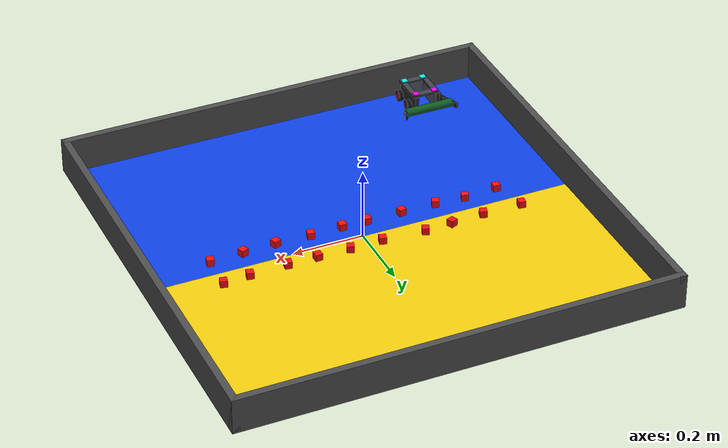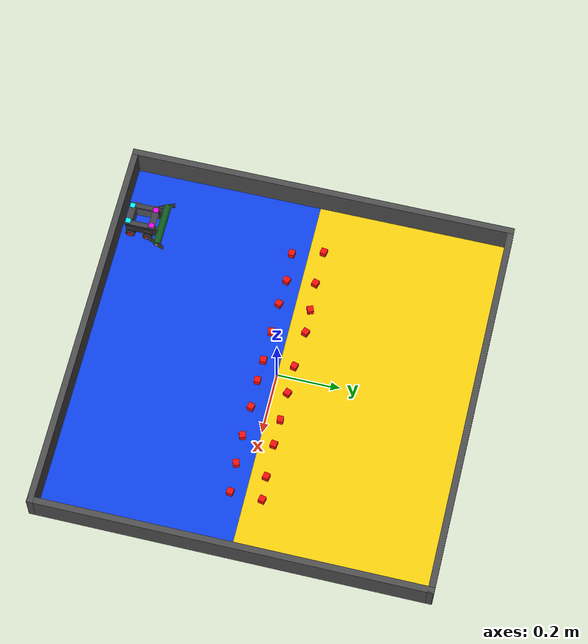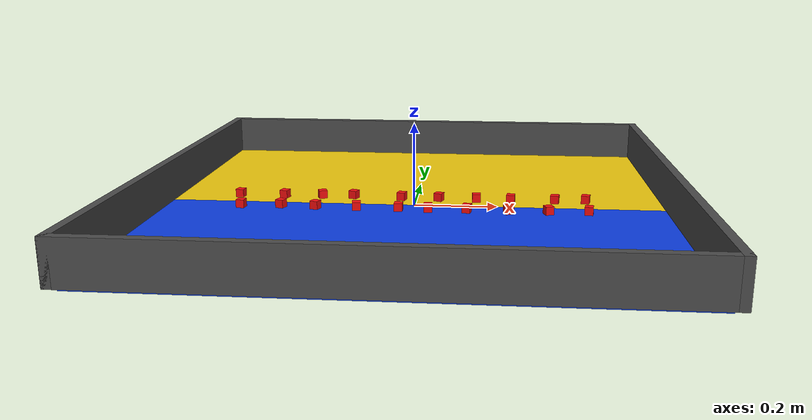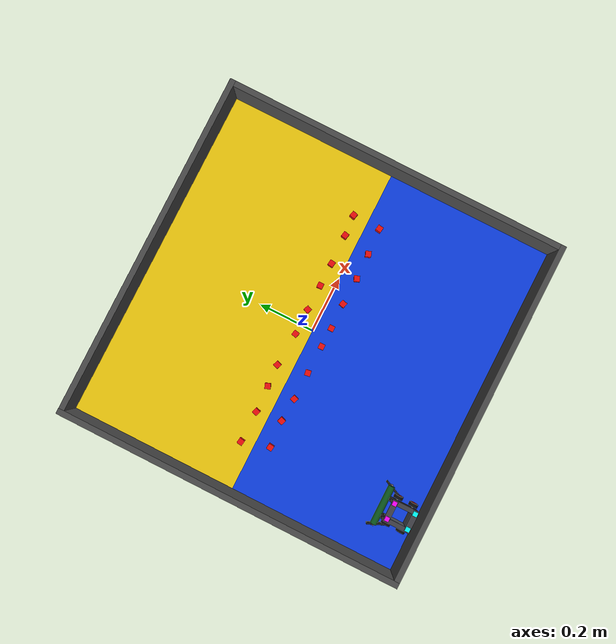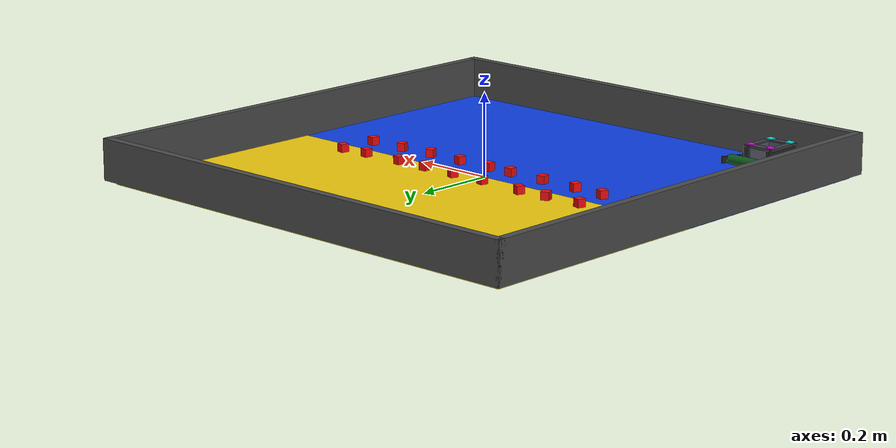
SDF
<?xml version="1.0"?>
<sdf version="1.6">
  <world name="competition">

    <scene>
      <ambient>0.55 0.55 0.55 1</ambient>
      <background>0.75 0.75 0.75 1</background>
      <shadows>false</shadows>
    </scene>

    <light name="sun" type="directional">
      <cast_shadows>false</cast_shadows>
      <pose>0 0 10 0 0 0</pose>
      <diffuse>0.8 0.8 0.8 1</diffuse>
      <specular>0.2 0.2 0.2 1</specular>
      <attenuation>
        <range>1000</range>
        <constant>0.9</constant>
        <linear>0.01</linear>
        <quadratic>0.001</quadratic>
      </attenuation>
      <direction>-0.5 0.1 -0.9</direction>
    </light>

    <model name="field">
      <static>true</static>
      <link name="field_link">

        <visual name="blue">
          <pose>0 -0.3 -0.005 0 0 0</pose>
          <geometry>
            <box><size>1.2 0.6 0.01</size></box>
          </geometry>
          <material>
            <ambient>0.05 0.25 0.9 1</ambient>
            <diffuse>0.05 0.25 0.9 1</diffuse>
          </material>
        </visual>

        <visual name="yellow">
          <pose>0 0.3 -0.005 0 0 0</pose>
          <geometry>
            <box><size>1.2 0.6 0.01</size></box>
          </geometry>
          <material>
            <ambient>0.95 0.8 0.05 1</ambient>
            <diffuse>0.95 0.8 0.05 1</diffuse>
          </material>
        </visual>

        <collision name="floor_collision">
          <pose>0 0 -0.005 0 0 0</pose>
          <geometry>
            <box><size>1.2 1.2 0.01</size></box>
          </geometry>
          <surface>
            <contact>
              <ode>
                <kp>2.0e4</kp>
                <kd>20</kd>
                <max_vel>0.2</max_vel>
                <min_depth>0.001</min_depth>
              </ode>
            </contact>
          </surface>
        </collision>

        <collision name="wall_left">
          <pose>-0.61 0 0.05 0 0 0</pose>
          <geometry>
            <box><size>0.02 1.24 0.1</size></box>
          </geometry>
          <surface>
            <contact>
              <ode>
                <kp>2.0e4</kp>
                <kd>20</kd>
                <max_vel>0.2</max_vel>
                <min_depth>0.001</min_depth>
              </ode>
            </contact>
          </surface>
        </collision>
        <visual name="wall_left_visual">
          <pose>-0.61 0 0.05 0 0 0</pose>
          <geometry>
            <box><size>0.02 1.24 0.1</size></box>
          </geometry>
          <material>
            <ambient>0.3 0.3 0.3 1</ambient>
            <diffuse>0.3 0.3 0.3 1</diffuse>
          </material>
        </visual>

        <collision name="wall_right">
          <pose>0.61 0 0.05 0 0 0</pose>
          <geometry>
            <box><size>0.02 1.24 0.1</size></box>
          </geometry>
          <surface>
            <contact>
              <ode>
                <kp>2.0e4</kp>
                <kd>20</kd>
                <max_vel>0.2</max_vel>
                <min_depth>0.001</min_depth>
              </ode>
            </contact>
          </surface>
        </collision>
        <visual name="wall_right_visual">
          <pose>0.61 0 0.05 0 0 0</pose>
          <geometry>
            <box><size>0.02 1.24 0.1</size></box>
          </geometry>
          <material>
            <ambient>0.3 0.3 0.3 1</ambient>
            <diffuse>0.3 0.3 0.3 1</diffuse>
          </material>
        </visual>

        <collision name="wall_front">
          <pose>0 0.61 0.05 0 0 0</pose>
          <geometry>
            <box><size>1.24 0.02 0.1</size></box>
          </geometry>
          <surface>
            <contact>
              <ode>
                <kp>2.0e4</kp>
                <kd>20</kd>
                <max_vel>0.2</max_vel>
                <min_depth>0.001</min_depth>
              </ode>
            </contact>
          </surface>
        </collision>
        <visual name="wall_front_visual">
          <pose>0 0.61 0.05 0 0 0</pose>
          <geometry>
            <box><size>1.24 0.02 0.1</size></box>
          </geometry>
          <material>
            <ambient>0.3 0.3 0.3 1</ambient>
            <diffuse>0.3 0.3 0.3 1</diffuse>
          </material>
        </visual>

        <collision name="wall_back">
          <pose>0 -0.61 0.05 0 0 0</pose>
          <geometry>
            <box><size>1.24 0.02 0.1</size></box>
          </geometry>
          <surface>
            <contact>
              <ode>
                <kp>2.0e4</kp>
                <kd>20</kd>
                <max_vel>0.2</max_vel>
                <min_depth>0.001</min_depth>
              </ode>
            </contact>
          </surface>
        </collision>
        <visual name="wall_back_visual">
          <pose>0 -0.61 0.05 0 0 0</pose>
          <geometry>
            <box><size>1.24 0.02 0.1</size></box>
          </geometry>
          <material>
            <ambient>0.3 0.3 0.3 1</ambient>
            <diffuse>0.3 0.3 0.3 1</diffuse>
          </material>
        </visual>

      </link>
    </model>

<model name="competition_robot">
  <pose>-0.4158 -0.54 0 0 0 1.57079632679</pose>
  <static>false</static>
  <allow_auto_disable>false</allow_auto_disable>

  <link name="base_link">
    <inertial>
      <pose>0.006358 0.000000 0.030826 0 0 0</pose>
      <mass>3.976000</mass>
      <inertia>
        <ixx>0.00546937</ixx>
        <iyy>0.00511639</iyy>
        <izz>0.00882312</izz>
        <ixy>0.00000000</ixy>
        <ixz>0.00022936</ixz>
        <iyz>-0.00000000</iyz>
      </inertia>
    </inertial>

    <collision name="roof_rear">
      <pose>-0.038 0 0.05 0 0 0.0</pose>
      <geometry><box><size>0.02 0.08 0.006</size></box></geometry>
        <surface>
          <friction>
            <ode>
              <mu>0.0</mu>
              <mu2>0.0</mu2>
            </ode>
          </friction>
          <contact>
            <ode>
              <kp>2.0e4</kp>
              <kd>20</kd>
              <max_vel>0.2</max_vel>
              <min_depth>0.001</min_depth>
            </ode>
          </contact>
        </surface>
    </collision>
    <visual name="roof_rear">
      <pose>-0.038 0 0.05 0 0 0.0</pose>
      <geometry><box><size>0.02 0.08 0.006</size></box></geometry>
      <material>
        <ambient>0.25 0.25 0.28 1</ambient>
        <diffuse>0.25 0.25 0.28 1</diffuse>
      </material>
    </visual>
    <collision name="roof_front">
      <pose>0.038 0 0.05 0 0 0.0</pose>
      <geometry><box><size>0.02 0.08 0.006</size></box></geometry>
        <surface>
          <friction>
            <ode>
              <mu>0.0</mu>
              <mu2>0.0</mu2>
            </ode>
          </friction>
          <contact>
            <ode>
              <kp>2.0e4</kp>
              <kd>20</kd>
              <max_vel>0.2</max_vel>
              <min_depth>0.001</min_depth>
            </ode>
          </contact>
        </surface>
    </collision>
    <visual name="roof_front">
      <pose>0.038 0 0.05 0 0 0.0</pose>
      <geometry><box><size>0.02 0.08 0.006</size></box></geometry>
      <material>
        <ambient>0.25 0.25 0.28 1</ambient>
        <diffuse>0.25 0.25 0.28 1</diffuse>
      </material>
    </visual>
    <collision name="roof_left">
      <pose>0 0.032 0.05 0 0 0.0</pose>
      <geometry><box><size>0.08 0.016 0.006</size></box></geometry>
        <surface>
          <friction>
            <ode>
              <mu>0.0</mu>
              <mu2>0.0</mu2>
            </ode>
          </friction>
          <contact>
            <ode>
              <kp>2.0e4</kp>
              <kd>20</kd>
              <max_vel>0.2</max_vel>
              <min_depth>0.001</min_depth>
            </ode>
          </contact>
        </surface>
    </collision>
    <visual name="roof_left">
      <pose>0 0.032 0.05 0 0 0.0</pose>
      <geometry><box><size>0.08 0.016 0.006</size></box></geometry>
      <material>
        <ambient>0.25 0.25 0.28 1</ambient>
        <diffuse>0.25 0.25 0.28 1</diffuse>
      </material>
    </visual>
    <collision name="roof_right">
      <pose>0 -0.032 0.05 0 0 0.0</pose>
      <geometry><box><size>0.08 0.016 0.006</size></box></geometry>
        <surface>
          <friction>
            <ode>
              <mu>0.0</mu>
              <mu2>0.0</mu2>
            </ode>
          </friction>
          <contact>
            <ode>
              <kp>2.0e4</kp>
              <kd>20</kd>
              <max_vel>0.2</max_vel>
              <min_depth>0.001</min_depth>
            </ode>
          </contact>
        </surface>
    </collision>
    <visual name="roof_right">
      <pose>0 -0.032 0.05 0 0 0.0</pose>
      <geometry><box><size>0.08 0.016 0.006</size></box></geometry>
      <material>
        <ambient>0.25 0.25 0.28 1</ambient>
        <diffuse>0.25 0.25 0.28 1</diffuse>
      </material>
    </visual>
    <collision name="rail_left">
      <pose>0.005 0.032 0.029 0 0 0.0</pose>
      <geometry><box><size>0.102 0.01 0.044</size></box></geometry>
        <surface>
          <friction>
            <ode>
              <mu>0.0</mu>
              <mu2>0.0</mu2>
            </ode>
          </friction>
          <contact>
            <ode>
              <kp>2.0e4</kp>
              <kd>20</kd>
              <max_vel>0.2</max_vel>
              <min_depth>0.001</min_depth>
            </ode>
          </contact>
        </surface>
    </collision>
    <visual name="rail_left">
      <pose>0.005 0.032 0.029 0 0 0.0</pose>
      <geometry><box><size>0.102 0.01 0.044</size></box></geometry>
      <material>
        <ambient>0.15 0.15 0.16 1</ambient>
        <diffuse>0.15 0.15 0.16 1</diffuse>
      </material>
    </visual>
    <collision name="rail_right">
      <pose>0.005 -0.032 0.029 0 0 0.0</pose>
      <geometry><box><size>0.102 0.01 0.044</size></box></geometry>
        <surface>
          <friction>
            <ode>
              <mu>0.0</mu>
              <mu2>0.0</mu2>
            </ode>
          </friction>
          <contact>
            <ode>
              <kp>2.0e4</kp>
              <kd>20</kd>
              <max_vel>0.2</max_vel>
              <min_depth>0.001</min_depth>
            </ode>
          </contact>
        </surface>
    </collision>
    <visual name="rail_right">
      <pose>0.005 -0.032 0.029 0 0 0.0</pose>
      <geometry><box><size>0.102 0.01 0.044</size></box></geometry>
      <material>
        <ambient>0.15 0.15 0.16 1</ambient>
        <diffuse>0.15 0.15 0.16 1</diffuse>
      </material>
    </visual>
    <collision name="wall_left">
      <pose>0.008 0.029 0.027 0 0 0.0</pose>
      <geometry><box><size>0.08 0.01 0.046</size></box></geometry>
        <surface>
          <friction>
            <ode>
              <mu>0.4</mu>
              <mu2>0.4</mu2>
            </ode>
          </friction>
          <contact>
            <ode>
              <kp>2.0e4</kp>
              <kd>20</kd>
              <max_vel>0.2</max_vel>
              <min_depth>0.001</min_depth>
            </ode>
          </contact>
        </surface>
    </collision>
    <visual name="wall_left">
      <pose>0.008 0.029 0.027 0 0 0.0</pose>
      <geometry><box><size>0.08 0.01 0.046</size></box></geometry>
      <material>
        <ambient>0.32 0.34 0.38 1</ambient>
        <diffuse>0.32 0.34 0.38 1</diffuse>
      </material>
    </visual>
    <collision name="wall_right">
      <pose>0.008 -0.029 0.027 0 0 0.0</pose>
      <geometry><box><size>0.08 0.01 0.046</size></box></geometry>
        <surface>
          <friction>
            <ode>
              <mu>0.4</mu>
              <mu2>0.4</mu2>
            </ode>
          </friction>
          <contact>
            <ode>
              <kp>2.0e4</kp>
              <kd>20</kd>
              <max_vel>0.2</max_vel>
              <min_depth>0.001</min_depth>
            </ode>
          </contact>
        </surface>
    </collision>
    <visual name="wall_right">
      <pose>0.008 -0.029 0.027 0 0 0.0</pose>
      <geometry><box><size>0.08 0.01 0.046</size></box></geometry>
      <material>
        <ambient>0.32 0.34 0.38 1</ambient>
        <diffuse>0.32 0.34 0.38 1</diffuse>
      </material>
    </visual>
    <collision name="wall_rear">
      <pose>-0.032 0 0.027 0 0 0.0</pose>
      <geometry><box><size>0.012 0.068 0.046</size></box></geometry>
        <surface>
          <friction>
            <ode>
              <mu>0.4</mu>
              <mu2>0.4</mu2>
            </ode>
          </friction>
          <contact>
            <ode>
              <kp>2.0e4</kp>
              <kd>20</kd>
              <max_vel>0.2</max_vel>
              <min_depth>0.001</min_depth>
            </ode>
          </contact>
        </surface>
    </collision>
    <visual name="wall_rear">
      <pose>-0.032 0 0.027 0 0 0.0</pose>
      <geometry><box><size>0.012 0.068 0.046</size></box></geometry>
      <material>
        <ambient>0.32 0.34 0.38 1</ambient>
        <diffuse>0.32 0.34 0.38 1</diffuse>
      </material>
    </visual>
    <collision name="front_left_wheel">
      <pose>0.028 0.048 0.016 1.5707963267948966 0 0</pose>
      <geometry><cylinder><radius>0.016</radius><length>0.012</length></cylinder></geometry>
        <surface>
          <friction>
            <ode>
              <mu>0.0</mu>
              <mu2>0.0</mu2>
              <slip1>1.0</slip1>
              <slip2>1.0</slip2>
            </ode>
          </friction>
          <contact>
            <ode>
              <kp>2.0e4</kp>
              <kd>20</kd>
              <max_vel>0.2</max_vel>
              <min_depth>0.001</min_depth>
            </ode>
          </contact>
        </surface>
    </collision>
    <visual name="front_left_wheel">
      <pose>0.028 0.048 0.016 1.5707963267948966 0 0</pose>
      <geometry><cylinder><radius>0.016</radius><length>0.012</length></cylinder></geometry>
      <material>
        <ambient>0.05 0.05 0.05 1</ambient>
        <diffuse>0.05 0.05 0.05 1</diffuse>
      </material>
    </visual>
    <visual name="front_left_hub">
      <pose>0.028 0.048 0.016 1.5707963267948966 0 0</pose>
      <geometry><cylinder><radius>0.01</radius><length>0.013</length></cylinder></geometry>
      <material>
        <ambient>0.75 0.08 0.08 1</ambient>
        <diffuse>0.75 0.08 0.08 1</diffuse>
      </material>
    </visual>
    <collision name="front_left_axle">
      <pose>0.028 0.041 0.016 0 0 0.0</pose>
      <geometry><box><size>0.006 0.022 0.006</size></box></geometry>
        <surface>
          <friction>
            <ode>
              <mu>0.0</mu>
              <mu2>0.0</mu2>
            </ode>
          </friction>
          <contact>
            <ode>
              <kp>2.0e4</kp>
              <kd>20</kd>
              <max_vel>0.2</max_vel>
              <min_depth>0.001</min_depth>
            </ode>
          </contact>
        </surface>
    </collision>
    <visual name="front_left_axle">
      <pose>0.028 0.041 0.016 0 0 0.0</pose>
      <geometry><box><size>0.006 0.022 0.006</size></box></geometry>
      <material>
        <ambient>0.55 0.55 0.58 1</ambient>
        <diffuse>0.55 0.55 0.58 1</diffuse>
      </material>
    </visual>
    <collision name="front_right_wheel">
      <pose>0.028 -0.048 0.016 1.5707963267948966 0 0</pose>
      <geometry><cylinder><radius>0.016</radius><length>0.012</length></cylinder></geometry>
        <surface>
          <friction>
            <ode>
              <mu>0.0</mu>
              <mu2>0.0</mu2>
              <slip1>1.0</slip1>
              <slip2>1.0</slip2>
            </ode>
          </friction>
          <contact>
            <ode>
              <kp>2.0e4</kp>
              <kd>20</kd>
              <max_vel>0.2</max_vel>
              <min_depth>0.001</min_depth>
            </ode>
          </contact>
        </surface>
    </collision>
    <visual name="front_right_wheel">
      <pose>0.028 -0.048 0.016 1.5707963267948966 0 0</pose>
      <geometry><cylinder><radius>0.016</radius><length>0.012</length></cylinder></geometry>
      <material>
        <ambient>0.05 0.05 0.05 1</ambient>
        <diffuse>0.05 0.05 0.05 1</diffuse>
      </material>
    </visual>
    <visual name="front_right_hub">
      <pose>0.028 -0.048 0.016 1.5707963267948966 0 0</pose>
      <geometry><cylinder><radius>0.01</radius><length>0.013</length></cylinder></geometry>
      <material>
        <ambient>0.75 0.08 0.08 1</ambient>
        <diffuse>0.75 0.08 0.08 1</diffuse>
      </material>
    </visual>
    <collision name="front_right_axle">
      <pose>0.028 -0.041 0.016 0 0 0.0</pose>
      <geometry><box><size>0.006 0.022 0.006</size></box></geometry>
        <surface>
          <friction>
            <ode>
              <mu>0.0</mu>
              <mu2>0.0</mu2>
            </ode>
          </friction>
          <contact>
            <ode>
              <kp>2.0e4</kp>
              <kd>20</kd>
              <max_vel>0.2</max_vel>
              <min_depth>0.001</min_depth>
            </ode>
          </contact>
        </surface>
    </collision>
    <visual name="front_right_axle">
      <pose>0.028 -0.041 0.016 0 0 0.0</pose>
      <geometry><box><size>0.006 0.022 0.006</size></box></geometry>
      <material>
        <ambient>0.55 0.55 0.58 1</ambient>
        <diffuse>0.55 0.55 0.58 1</diffuse>
      </material>
    </visual>
    <collision name="rear_left_wheel">
      <pose>-0.028 0.048 0.016 1.5707963267948966 0 0</pose>
      <geometry><cylinder><radius>0.016</radius><length>0.012</length></cylinder></geometry>
        <surface>
          <friction>
            <ode>
              <mu>0.0</mu>
              <mu2>0.0</mu2>
              <slip1>1.0</slip1>
              <slip2>1.0</slip2>
            </ode>
          </friction>
          <contact>
            <ode>
              <kp>2.0e4</kp>
              <kd>20</kd>
              <max_vel>0.2</max_vel>
              <min_depth>0.001</min_depth>
            </ode>
          </contact>
        </surface>
    </collision>
    <visual name="rear_left_wheel">
      <pose>-0.028 0.048 0.016 1.5707963267948966 0 0</pose>
      <geometry><cylinder><radius>0.016</radius><length>0.012</length></cylinder></geometry>
      <material>
        <ambient>0.05 0.05 0.05 1</ambient>
        <diffuse>0.05 0.05 0.05 1</diffuse>
      </material>
    </visual>
    <visual name="rear_left_hub">
      <pose>-0.028 0.048 0.016 1.5707963267948966 0 0</pose>
      <geometry><cylinder><radius>0.01</radius><length>0.013</length></cylinder></geometry>
      <material>
        <ambient>0.75 0.08 0.08 1</ambient>
        <diffuse>0.75 0.08 0.08 1</diffuse>
      </material>
    </visual>
    <collision name="rear_left_axle">
      <pose>-0.028 0.041 0.016 0 0 0.0</pose>
      <geometry><box><size>0.006 0.022 0.006</size></box></geometry>
        <surface>
          <friction>
            <ode>
              <mu>0.0</mu>
              <mu2>0.0</mu2>
            </ode>
          </friction>
          <contact>
            <ode>
              <kp>2.0e4</kp>
              <kd>20</kd>
              <max_vel>0.2</max_vel>
              <min_depth>0.001</min_depth>
            </ode>
          </contact>
        </surface>
    </collision>
    <visual name="rear_left_axle">
      <pose>-0.028 0.041 0.016 0 0 0.0</pose>
      <geometry><box><size>0.006 0.022 0.006</size></box></geometry>
      <material>
        <ambient>0.55 0.55 0.58 1</ambient>
        <diffuse>0.55 0.55 0.58 1</diffuse>
      </material>
    </visual>
    <collision name="rear_right_wheel">
      <pose>-0.028 -0.048 0.016 1.5707963267948966 0 0</pose>
      <geometry><cylinder><radius>0.016</radius><length>0.012</length></cylinder></geometry>
        <surface>
          <friction>
            <ode>
              <mu>0.0</mu>
              <mu2>0.0</mu2>
              <slip1>1.0</slip1>
              <slip2>1.0</slip2>
            </ode>
          </friction>
          <contact>
            <ode>
              <kp>2.0e4</kp>
              <kd>20</kd>
              <max_vel>0.2</max_vel>
              <min_depth>0.001</min_depth>
            </ode>
          </contact>
        </surface>
    </collision>
    <visual name="rear_right_wheel">
      <pose>-0.028 -0.048 0.016 1.5707963267948966 0 0</pose>
      <geometry><cylinder><radius>0.016</radius><length>0.012</length></cylinder></geometry>
      <material>
        <ambient>0.05 0.05 0.05 1</ambient>
        <diffuse>0.05 0.05 0.05 1</diffuse>
      </material>
    </visual>
    <visual name="rear_right_hub">
      <pose>-0.028 -0.048 0.016 1.5707963267948966 0 0</pose>
      <geometry><cylinder><radius>0.01</radius><length>0.013</length></cylinder></geometry>
      <material>
        <ambient>0.75 0.08 0.08 1</ambient>
        <diffuse>0.75 0.08 0.08 1</diffuse>
      </material>
    </visual>
    <collision name="rear_right_axle">
      <pose>-0.028 -0.041 0.016 0 0 0.0</pose>
      <geometry><box><size>0.006 0.022 0.006</size></box></geometry>
        <surface>
          <friction>
            <ode>
              <mu>0.0</mu>
              <mu2>0.0</mu2>
            </ode>
          </friction>
          <contact>
            <ode>
              <kp>2.0e4</kp>
              <kd>20</kd>
              <max_vel>0.2</max_vel>
              <min_depth>0.001</min_depth>
            </ode>
          </contact>
        </surface>
    </collision>
    <visual name="rear_right_axle">
      <pose>-0.028 -0.041 0.016 0 0 0.0</pose>
      <geometry><box><size>0.006 0.022 0.006</size></box></geometry>
      <material>
        <ambient>0.55 0.55 0.58 1</ambient>
        <diffuse>0.55 0.55 0.58 1</diffuse>
      </material>
    </visual>
    <collision name="brush">
      <pose>0.064 0 0.016 1.5707963267948966 0 0</pose>
      <geometry><cylinder><radius>0.012</radius><length>0.14</length></cylinder></geometry>
        <surface>
          <friction>
            <ode>
              <mu>0.4</mu>
              <mu2>0.4</mu2>
            </ode>
          </friction>
          <contact>
            <ode>
              <kp>2.0e4</kp>
              <kd>20</kd>
              <max_vel>0.2</max_vel>
              <min_depth>0.001</min_depth>
            </ode>
          </contact>
        </surface>
    </collision>
    <visual name="brush">
      <pose>0.064 0 0.016 1.5707963267948966 0 0</pose>
      <geometry><cylinder><radius>0.012</radius><length>0.14</length></cylinder></geometry>
      <material>
        <ambient>0.05 0.35 0.12 1</ambient>
        <diffuse>0.05 0.35 0.12 1</diffuse>
      </material>
    </visual>
    <visual name="brush_shaft">
      <pose>0.064 0 0.016 1.5707963267948966 0 0</pose>
      <geometry><cylinder><radius>0.004</radius><length>0.152</length></cylinder></geometry>
      <material>
        <ambient>0.55 0.55 0.58 1</ambient>
        <diffuse>0.55 0.55 0.58 1</diffuse>
      </material>
    </visual>
    <collision name="plate_left">
      <pose>0.05 0.062 0.016 0 0 0.42</pose>
      <geometry><box><size>0.08 0.006 0.016</size></box></geometry>
        <surface>
          <friction>
            <ode>
              <mu>0.2</mu>
              <mu2>0.2</mu2>
            </ode>
          </friction>
          <contact>
            <ode>
              <kp>2.0e4</kp>
              <kd>20</kd>
              <max_vel>0.2</max_vel>
              <min_depth>0.001</min_depth>
            </ode>
          </contact>
        </surface>
    </collision>
    <visual name="plate_left">
      <pose>0.05 0.062 0.016 0 0 0.42</pose>
      <geometry><box><size>0.08 0.006 0.016</size></box></geometry>
      <material>
        <ambient>0.12 0.12 0.12 1</ambient>
        <diffuse>0.12 0.12 0.12 1</diffuse>
      </material>
    </visual>
    <collision name="plate_right">
      <pose>0.05 -0.062 0.016 0 0 -0.42</pose>
      <geometry><box><size>0.08 0.006 0.016</size></box></geometry>
        <surface>
          <friction>
            <ode>
              <mu>0.2</mu>
              <mu2>0.2</mu2>
            </ode>
          </friction>
          <contact>
            <ode>
              <kp>2.0e4</kp>
              <kd>20</kd>
              <max_vel>0.2</max_vel>
              <min_depth>0.001</min_depth>
            </ode>
          </contact>
        </surface>
    </collision>
    <visual name="plate_right">
      <pose>0.05 -0.062 0.016 0 0 -0.42</pose>
      <geometry><box><size>0.08 0.006 0.016</size></box></geometry>
      <material>
        <ambient>0.12 0.12 0.12 1</ambient>
        <diffuse>0.12 0.12 0.12 1</diffuse>
      </material>
    </visual>
    <collision name="front_left_marker">
      <pose>0.038 0.028 0.054 0 0 0.0</pose>
      <geometry><box><size>0.016 0.016 0.003</size></box></geometry>
        <surface>
          <friction>
            <ode>
              <mu>0.0</mu>
              <mu2>0.0</mu2>
            </ode>
          </friction>
          <contact>
            <ode>
              <kp>2.0e4</kp>
              <kd>20</kd>
              <max_vel>0.2</max_vel>
              <min_depth>0.001</min_depth>
            </ode>
          </contact>
        </surface>
    </collision>
    <visual name="front_left_marker">
      <pose>0.038 0.028 0.054 0 0 0.0</pose>
      <geometry><box><size>0.016 0.016 0.003</size></box></geometry>
      <material>
        <ambient>1 0 1 1</ambient>
        <diffuse>1 0 1 1</diffuse>
      </material>
    </visual>
    <collision name="front_right_marker">
      <pose>0.038 -0.028 0.054 0 0 0.0</pose>
      <geometry><box><size>0.016 0.016 0.003</size></box></geometry>
        <surface>
          <friction>
            <ode>
              <mu>0.0</mu>
              <mu2>0.0</mu2>
            </ode>
          </friction>
          <contact>
            <ode>
              <kp>2.0e4</kp>
              <kd>20</kd>
              <max_vel>0.2</max_vel>
              <min_depth>0.001</min_depth>
            </ode>
          </contact>
        </surface>
    </collision>
    <visual name="front_right_marker">
      <pose>0.038 -0.028 0.054 0 0 0.0</pose>
      <geometry><box><size>0.016 0.016 0.003</size></box></geometry>
      <material>
        <ambient>1 0 1 1</ambient>
        <diffuse>1 0 1 1</diffuse>
      </material>
    </visual>
    <collision name="rear_left_marker">
      <pose>-0.038 0.028 0.054 0 0 0.0</pose>
      <geometry><box><size>0.016 0.016 0.003</size></box></geometry>
        <surface>
          <friction>
            <ode>
              <mu>0.0</mu>
              <mu2>0.0</mu2>
            </ode>
          </friction>
          <contact>
            <ode>
              <kp>2.0e4</kp>
              <kd>20</kd>
              <max_vel>0.2</max_vel>
              <min_depth>0.001</min_depth>
            </ode>
          </contact>
        </surface>
    </collision>
    <visual name="rear_left_marker">
      <pose>-0.038 0.028 0.054 0 0 0.0</pose>
      <geometry><box><size>0.016 0.016 0.003</size></box></geometry>
      <material>
        <ambient>0 1 1 1</ambient>
        <diffuse>0 1 1 1</diffuse>
      </material>
    </visual>
    <collision name="rear_right_marker">
      <pose>-0.038 -0.028 0.054 0 0 0.0</pose>
      <geometry><box><size>0.016 0.016 0.003</size></box></geometry>
        <surface>
          <friction>
            <ode>
              <mu>0.0</mu>
              <mu2>0.0</mu2>
            </ode>
          </friction>
          <contact>
            <ode>
              <kp>2.0e4</kp>
              <kd>20</kd>
              <max_vel>0.2</max_vel>
              <min_depth>0.001</min_depth>
            </ode>
          </contact>
        </surface>
    </collision>
    <visual name="rear_right_marker">
      <pose>-0.038 -0.028 0.054 0 0 0.0</pose>
      <geometry><box><size>0.016 0.016 0.003</size></box></geometry>
      <material>
        <ambient>0 1 1 1</ambient>
        <diffuse>0 1 1 1</diffuse>
      </material>
    </visual>
  </link>

  <plugin name="omni_drive" filename="libgazebo_ros_planar_move.so">
    <ros>
      <remapping>cmd_vel:=cmd_vel</remapping>
      <remapping>odom:=odom</remapping>
    </ros>
    <update_rate>0</update_rate>
    <publish_rate>50</publish_rate>
    <publish_odom>true</publish_odom>
    <publish_odom_tf>true</publish_odom_tf>
    <odometry_frame>odom</odometry_frame>
    <robot_base_frame>base_link</robot_base_frame>
  </plugin>

  <plugin name="keep_upright" filename="libkeep_upright.so"/>

</model>

    <model name="block_00">
      <pose>-0.4158 -0.0517 0.010 0 0 -0.1111</pose>
      <link name="link">
        <inertial>
          <mass>0.015</mass>
          <inertia>
            <ixx>1.00000000e-06</ixx>
            <iyy>1.00000000e-06</iyy>
            <izz>1.00000000e-06</izz>
          </inertia>
        </inertial>
        <collision name="collision">
          <geometry><box><size>0.02 0.02 0.02</size></box></geometry>
          <surface>
            <bounce>
              <restitution_coefficient>0</restitution_coefficient>
              <threshold>100</threshold>
            </bounce>
            <friction>
              <ode><mu>0.3</mu><mu2>0.3</mu2></ode>
            </friction>
            <contact>
              <ode>
                <kp>5.0e4</kp>
                <kd>80</kd>
                <max_vel>0.1</max_vel>
                <min_depth>0.001</min_depth>
              </ode>
            </contact>
          </surface>
        </collision>
        <visual name="visual">
          <geometry><box><size>0.02 0.02 0.02</size></box></geometry>
          <material>
            <ambient>0.95 0.05 0.05 1</ambient>
            <diffuse>0.95 0.05 0.05 1</diffuse>
          </material>
        </visual>
      </link>
    </model>

    <model name="block_01">
      <pose>-0.3194 -0.0451 0.010 0 0 -0.3396</pose>
      <link name="link">
        <inertial>
          <mass>0.015</mass>
          <inertia>
            <ixx>1.00000000e-06</ixx>
            <iyy>1.00000000e-06</iyy>
            <izz>1.00000000e-06</izz>
          </inertia>
        </inertial>
        <collision name="collision">
          <geometry><box><size>0.02 0.02 0.02</size></box></geometry>
          <surface>
            <bounce>
              <restitution_coefficient>0</restitution_coefficient>
              <threshold>100</threshold>
            </bounce>
            <friction>
              <ode><mu>0.3</mu><mu2>0.3</mu2></ode>
            </friction>
            <contact>
              <ode>
                <kp>5.0e4</kp>
                <kd>80</kd>
                <max_vel>0.1</max_vel>
                <min_depth>0.001</min_depth>
              </ode>
            </contact>
          </surface>
        </collision>
        <visual name="visual">
          <geometry><box><size>0.02 0.02 0.02</size></box></geometry>
          <material>
            <ambient>0.95 0.05 0.05 1</ambient>
            <diffuse>0.95 0.05 0.05 1</diffuse>
          </material>
        </visual>
      </link>
    </model>

    <model name="block_02">
      <pose>-0.2342 -0.0502 0.010 0 0 -0.3478</pose>
      <link name="link">
        <inertial>
          <mass>0.015</mass>
          <inertia>
            <ixx>1.00000000e-06</ixx>
            <iyy>1.00000000e-06</iyy>
            <izz>1.00000000e-06</izz>
          </inertia>
        </inertial>
        <collision name="collision">
          <geometry><box><size>0.02 0.02 0.02</size></box></geometry>
          <surface>
            <bounce>
              <restitution_coefficient>0</restitution_coefficient>
              <threshold>100</threshold>
            </bounce>
            <friction>
              <ode><mu>0.3</mu><mu2>0.3</mu2></ode>
            </friction>
            <contact>
              <ode>
                <kp>5.0e4</kp>
                <kd>80</kd>
                <max_vel>0.1</max_vel>
                <min_depth>0.001</min_depth>
              </ode>
            </contact>
          </surface>
        </collision>
        <visual name="visual">
          <geometry><box><size>0.02 0.02 0.02</size></box></geometry>
          <material>
            <ambient>0.95 0.05 0.05 1</ambient>
            <diffuse>0.95 0.05 0.05 1</diffuse>
          </material>
        </visual>
      </link>
    </model>

    <model name="block_03">
      <pose>-0.1347 -0.0511 0.010 0 0 0.1361</pose>
      <link name="link">
        <inertial>
          <mass>0.015</mass>
          <inertia>
            <ixx>1.00000000e-06</ixx>
            <iyy>1.00000000e-06</iyy>
            <izz>1.00000000e-06</izz>
          </inertia>
        </inertial>
        <collision name="collision">
          <geometry><box><size>0.02 0.02 0.02</size></box></geometry>
          <surface>
            <bounce>
              <restitution_coefficient>0</restitution_coefficient>
              <threshold>100</threshold>
            </bounce>
            <friction>
              <ode><mu>0.3</mu><mu2>0.3</mu2></ode>
            </friction>
            <contact>
              <ode>
                <kp>5.0e4</kp>
                <kd>80</kd>
                <max_vel>0.1</max_vel>
                <min_depth>0.001</min_depth>
              </ode>
            </contact>
          </surface>
        </collision>
        <visual name="visual">
          <geometry><box><size>0.02 0.02 0.02</size></box></geometry>
          <material>
            <ambient>0.95 0.05 0.05 1</ambient>
            <diffuse>0.95 0.05 0.05 1</diffuse>
          </material>
        </visual>
      </link>
    </model>

    <model name="block_04">
      <pose>-0.0339 -0.0519 0.010 0 0 0.0121</pose>
      <link name="link">
        <inertial>
          <mass>0.015</mass>
          <inertia>
            <ixx>1.00000000e-06</ixx>
            <iyy>1.00000000e-06</iyy>
            <izz>1.00000000e-06</izz>
          </inertia>
        </inertial>
        <collision name="collision">
          <geometry><box><size>0.02 0.02 0.02</size></box></geometry>
          <surface>
            <bounce>
              <restitution_coefficient>0</restitution_coefficient>
              <threshold>100</threshold>
            </bounce>
            <friction>
              <ode><mu>0.3</mu><mu2>0.3</mu2></ode>
            </friction>
            <contact>
              <ode>
                <kp>5.0e4</kp>
                <kd>80</kd>
                <max_vel>0.1</max_vel>
                <min_depth>0.001</min_depth>
              </ode>
            </contact>
          </surface>
        </collision>
        <visual name="visual">
          <geometry><box><size>0.02 0.02 0.02</size></box></geometry>
          <material>
            <ambient>0.95 0.05 0.05 1</ambient>
            <diffuse>0.95 0.05 0.05 1</diffuse>
          </material>
        </visual>
      </link>
    </model>

    <model name="block_05">
      <pose>0.0366 -0.0536 0.010 0 0 0.0173</pose>
      <link name="link">
        <inertial>
          <mass>0.015</mass>
          <inertia>
            <ixx>1.00000000e-06</ixx>
            <iyy>1.00000000e-06</iyy>
            <izz>1.00000000e-06</izz>
          </inertia>
        </inertial>
        <collision name="collision">
          <geometry><box><size>0.02 0.02 0.02</size></box></geometry>
          <surface>
            <bounce>
              <restitution_coefficient>0</restitution_coefficient>
              <threshold>100</threshold>
            </bounce>
            <friction>
              <ode><mu>0.3</mu><mu2>0.3</mu2></ode>
            </friction>
            <contact>
              <ode>
                <kp>5.0e4</kp>
                <kd>80</kd>
                <max_vel>0.1</max_vel>
                <min_depth>0.001</min_depth>
              </ode>
            </contact>
          </surface>
        </collision>
        <visual name="visual">
          <geometry><box><size>0.02 0.02 0.02</size></box></geometry>
          <material>
            <ambient>0.95 0.05 0.05 1</ambient>
            <diffuse>0.95 0.05 0.05 1</diffuse>
          </material>
        </visual>
      </link>
    </model>

    <model name="block_06">
      <pose>0.1283 -0.0517 0.010 0 0 -0.2362</pose>
      <link name="link">
        <inertial>
          <mass>0.015</mass>
          <inertia>
            <ixx>1.00000000e-06</ixx>
            <iyy>1.00000000e-06</iyy>
            <izz>1.00000000e-06</izz>
          </inertia>
        </inertial>
        <collision name="collision">
          <geometry><box><size>0.02 0.02 0.02</size></box></geometry>
          <surface>
            <bounce>
              <restitution_coefficient>0</restitution_coefficient>
              <threshold>100</threshold>
            </bounce>
            <friction>
              <ode><mu>0.3</mu><mu2>0.3</mu2></ode>
            </friction>
            <contact>
              <ode>
                <kp>5.0e4</kp>
                <kd>80</kd>
                <max_vel>0.1</max_vel>
                <min_depth>0.001</min_depth>
              </ode>
            </contact>
          </surface>
        </collision>
        <visual name="visual">
          <geometry><box><size>0.02 0.02 0.02</size></box></geometry>
          <material>
            <ambient>0.95 0.05 0.05 1</ambient>
            <diffuse>0.95 0.05 0.05 1</diffuse>
          </material>
        </visual>
      </link>
    </model>

    <model name="block_07">
      <pose>0.2269 -0.0544 0.010 0 0 0.3613</pose>
      <link name="link">
        <inertial>
          <mass>0.015</mass>
          <inertia>
            <ixx>1.00000000e-06</ixx>
            <iyy>1.00000000e-06</iyy>
            <izz>1.00000000e-06</izz>
          </inertia>
        </inertial>
        <collision name="collision">
          <geometry><box><size>0.02 0.02 0.02</size></box></geometry>
          <surface>
            <bounce>
              <restitution_coefficient>0</restitution_coefficient>
              <threshold>100</threshold>
            </bounce>
            <friction>
              <ode><mu>0.3</mu><mu2>0.3</mu2></ode>
            </friction>
            <contact>
              <ode>
                <kp>5.0e4</kp>
                <kd>80</kd>
                <max_vel>0.1</max_vel>
                <min_depth>0.001</min_depth>
              </ode>
            </contact>
          </surface>
        </collision>
        <visual name="visual">
          <geometry><box><size>0.02 0.02 0.02</size></box></geometry>
          <material>
            <ambient>0.95 0.05 0.05 1</ambient>
            <diffuse>0.95 0.05 0.05 1</diffuse>
          </material>
        </visual>
      </link>
    </model>

    <model name="block_08">
      <pose>0.3200 -0.0513 0.010 0 0 0.3371</pose>
      <link name="link">
        <inertial>
          <mass>0.015</mass>
          <inertia>
            <ixx>1.00000000e-06</ixx>
            <iyy>1.00000000e-06</iyy>
            <izz>1.00000000e-06</izz>
          </inertia>
        </inertial>
        <collision name="collision">
          <geometry><box><size>0.02 0.02 0.02</size></box></geometry>
          <surface>
            <bounce>
              <restitution_coefficient>0</restitution_coefficient>
              <threshold>100</threshold>
            </bounce>
            <friction>
              <ode><mu>0.3</mu><mu2>0.3</mu2></ode>
            </friction>
            <contact>
              <ode>
                <kp>5.0e4</kp>
                <kd>80</kd>
                <max_vel>0.1</max_vel>
                <min_depth>0.001</min_depth>
              </ode>
            </contact>
          </surface>
        </collision>
        <visual name="visual">
          <geometry><box><size>0.02 0.02 0.02</size></box></geometry>
          <material>
            <ambient>0.95 0.05 0.05 1</ambient>
            <diffuse>0.95 0.05 0.05 1</diffuse>
          </material>
        </visual>
      </link>
    </model>

    <model name="block_09">
      <pose>0.4146 -0.0462 0.010 0 0 -0.1506</pose>
      <link name="link">
        <inertial>
          <mass>0.015</mass>
          <inertia>
            <ixx>1.00000000e-06</ixx>
            <iyy>1.00000000e-06</iyy>
            <izz>1.00000000e-06</izz>
          </inertia>
        </inertial>
        <collision name="collision">
          <geometry><box><size>0.02 0.02 0.02</size></box></geometry>
          <surface>
            <bounce>
              <restitution_coefficient>0</restitution_coefficient>
              <threshold>100</threshold>
            </bounce>
            <friction>
              <ode><mu>0.3</mu><mu2>0.3</mu2></ode>
            </friction>
            <contact>
              <ode>
                <kp>5.0e4</kp>
                <kd>80</kd>
                <max_vel>0.1</max_vel>
                <min_depth>0.001</min_depth>
              </ode>
            </contact>
          </surface>
        </collision>
        <visual name="visual">
          <geometry><box><size>0.02 0.02 0.02</size></box></geometry>
          <material>
            <ambient>0.95 0.05 0.05 1</ambient>
            <diffuse>0.95 0.05 0.05 1</diffuse>
          </material>
        </visual>
      </link>
    </model>

    <model name="block_10">
      <pose>-0.4438 0.0457 0.010 0 0 -0.1496</pose>
      <link name="link">
        <inertial>
          <mass>0.015</mass>
          <inertia>
            <ixx>1.00000000e-06</ixx>
            <iyy>1.00000000e-06</iyy>
            <izz>1.00000000e-06</izz>
          </inertia>
        </inertial>
        <collision name="collision">
          <geometry><box><size>0.02 0.02 0.02</size></box></geometry>
          <surface>
            <bounce>
              <restitution_coefficient>0</restitution_coefficient>
              <threshold>100</threshold>
            </bounce>
            <friction>
              <ode><mu>0.3</mu><mu2>0.3</mu2></ode>
            </friction>
            <contact>
              <ode>
                <kp>5.0e4</kp>
                <kd>80</kd>
                <max_vel>0.1</max_vel>
                <min_depth>0.001</min_depth>
              </ode>
            </contact>
          </surface>
        </collision>
        <visual name="visual">
          <geometry><box><size>0.02 0.02 0.02</size></box></geometry>
          <material>
            <ambient>0.95 0.05 0.05 1</ambient>
            <diffuse>0.95 0.05 0.05 1</diffuse>
          </material>
        </visual>
      </link>
    </model>

    <model name="block_11">
      <pose>-0.3305 0.0452 0.010 0 0 -0.2751</pose>
      <link name="link">
        <inertial>
          <mass>0.015</mass>
          <inertia>
            <ixx>1.00000000e-06</ixx>
            <iyy>1.00000000e-06</iyy>
            <izz>1.00000000e-06</izz>
          </inertia>
        </inertial>
        <collision name="collision">
          <geometry><box><size>0.02 0.02 0.02</size></box></geometry>
          <surface>
            <bounce>
              <restitution_coefficient>0</restitution_coefficient>
              <threshold>100</threshold>
            </bounce>
            <friction>
              <ode><mu>0.3</mu><mu2>0.3</mu2></ode>
            </friction>
            <contact>
              <ode>
                <kp>5.0e4</kp>
                <kd>80</kd>
                <max_vel>0.1</max_vel>
                <min_depth>0.001</min_depth>
              </ode>
            </contact>
          </surface>
        </collision>
        <visual name="visual">
          <geometry><box><size>0.02 0.02 0.02</size></box></geometry>
          <material>
            <ambient>0.95 0.05 0.05 1</ambient>
            <diffuse>0.95 0.05 0.05 1</diffuse>
          </material>
        </visual>
      </link>
    </model>

    <model name="block_12">
      <pose>-0.2360 0.0503 0.010 0 0 0.3864</pose>
      <link name="link">
        <inertial>
          <mass>0.015</mass>
          <inertia>
            <ixx>1.00000000e-06</ixx>
            <iyy>1.00000000e-06</iyy>
            <izz>1.00000000e-06</izz>
          </inertia>
        </inertial>
        <collision name="collision">
          <geometry><box><size>0.02 0.02 0.02</size></box></geometry>
          <surface>
            <bounce>
              <restitution_coefficient>0</restitution_coefficient>
              <threshold>100</threshold>
            </bounce>
            <friction>
              <ode><mu>0.3</mu><mu2>0.3</mu2></ode>
            </friction>
            <contact>
              <ode>
                <kp>5.0e4</kp>
                <kd>80</kd>
                <max_vel>0.1</max_vel>
                <min_depth>0.001</min_depth>
              </ode>
            </contact>
          </surface>
        </collision>
        <visual name="visual">
          <geometry><box><size>0.02 0.02 0.02</size></box></geometry>
          <material>
            <ambient>0.95 0.05 0.05 1</ambient>
            <diffuse>0.95 0.05 0.05 1</diffuse>
          </material>
        </visual>
      </link>
    </model>

    <model name="block_13">
      <pose>-0.1568 0.0537 0.010 0 0 -0.3515</pose>
      <link name="link">
        <inertial>
          <mass>0.015</mass>
          <inertia>
            <ixx>1.00000000e-06</ixx>
            <iyy>1.00000000e-06</iyy>
            <izz>1.00000000e-06</izz>
          </inertia>
        </inertial>
        <collision name="collision">
          <geometry><box><size>0.02 0.02 0.02</size></box></geometry>
          <surface>
            <bounce>
              <restitution_coefficient>0</restitution_coefficient>
              <threshold>100</threshold>
            </bounce>
            <friction>
              <ode><mu>0.3</mu><mu2>0.3</mu2></ode>
            </friction>
            <contact>
              <ode>
                <kp>5.0e4</kp>
                <kd>80</kd>
                <max_vel>0.1</max_vel>
                <min_depth>0.001</min_depth>
              </ode>
            </contact>
          </surface>
        </collision>
        <visual name="visual">
          <geometry><box><size>0.02 0.02 0.02</size></box></geometry>
          <material>
            <ambient>0.95 0.05 0.05 1</ambient>
            <diffuse>0.95 0.05 0.05 1</diffuse>
          </material>
        </visual>
      </link>
    </model>

    <model name="block_14">
      <pose>-0.0357 0.0464 0.010 0 0 -0.2445</pose>
      <link name="link">
        <inertial>
          <mass>0.015</mass>
          <inertia>
            <ixx>1.00000000e-06</ixx>
            <iyy>1.00000000e-06</iyy>
            <izz>1.00000000e-06</izz>
          </inertia>
        </inertial>
        <collision name="collision">
          <geometry><box><size>0.02 0.02 0.02</size></box></geometry>
          <surface>
            <bounce>
              <restitution_coefficient>0</restitution_coefficient>
              <threshold>100</threshold>
            </bounce>
            <friction>
              <ode><mu>0.3</mu><mu2>0.3</mu2></ode>
            </friction>
            <contact>
              <ode>
                <kp>5.0e4</kp>
                <kd>80</kd>
                <max_vel>0.1</max_vel>
                <min_depth>0.001</min_depth>
              </ode>
            </contact>
          </surface>
        </collision>
        <visual name="visual">
          <geometry><box><size>0.02 0.02 0.02</size></box></geometry>
          <material>
            <ambient>0.95 0.05 0.05 1</ambient>
            <diffuse>0.95 0.05 0.05 1</diffuse>
          </material>
        </visual>
      </link>
    </model>

    <model name="block_15">
      <pose>0.0569 0.0470 0.010 0 0 -0.3816</pose>
      <link name="link">
        <inertial>
          <mass>0.015</mass>
          <inertia>
            <ixx>1.00000000e-06</ixx>
            <iyy>1.00000000e-06</iyy>
            <izz>1.00000000e-06</izz>
          </inertia>
        </inertial>
        <collision name="collision">
          <geometry><box><size>0.02 0.02 0.02</size></box></geometry>
          <surface>
            <bounce>
              <restitution_coefficient>0</restitution_coefficient>
              <threshold>100</threshold>
            </bounce>
            <friction>
              <ode><mu>0.3</mu><mu2>0.3</mu2></ode>
            </friction>
            <contact>
              <ode>
                <kp>5.0e4</kp>
                <kd>80</kd>
                <max_vel>0.1</max_vel>
                <min_depth>0.001</min_depth>
              </ode>
            </contact>
          </surface>
        </collision>
        <visual name="visual">
          <geometry><box><size>0.02 0.02 0.02</size></box></geometry>
          <material>
            <ambient>0.95 0.05 0.05 1</ambient>
            <diffuse>0.95 0.05 0.05 1</diffuse>
          </material>
        </visual>
      </link>
    </model>

    <model name="block_16">
      <pose>0.1495 0.0460 0.010 0 0 0.0380</pose>
      <link name="link">
        <inertial>
          <mass>0.015</mass>
          <inertia>
            <ixx>1.00000000e-06</ixx>
            <iyy>1.00000000e-06</iyy>
            <izz>1.00000000e-06</izz>
          </inertia>
        </inertial>
        <collision name="collision">
          <geometry><box><size>0.02 0.02 0.02</size></box></geometry>
          <surface>
            <bounce>
              <restitution_coefficient>0</restitution_coefficient>
              <threshold>100</threshold>
            </bounce>
            <friction>
              <ode><mu>0.3</mu><mu2>0.3</mu2></ode>
            </friction>
            <contact>
              <ode>
                <kp>5.0e4</kp>
                <kd>80</kd>
                <max_vel>0.1</max_vel>
                <min_depth>0.001</min_depth>
              </ode>
            </contact>
          </surface>
        </collision>
        <visual name="visual">
          <geometry><box><size>0.02 0.02 0.02</size></box></geometry>
          <material>
            <ambient>0.95 0.05 0.05 1</ambient>
            <diffuse>0.95 0.05 0.05 1</diffuse>
          </material>
        </visual>
      </link>
    </model>

    <model name="block_17">
      <pose>0.2340 0.0459 0.010 0 0 -0.1331</pose>
      <link name="link">
        <inertial>
          <mass>0.015</mass>
          <inertia>
            <ixx>1.00000000e-06</ixx>
            <iyy>1.00000000e-06</iyy>
            <izz>1.00000000e-06</izz>
          </inertia>
        </inertial>
        <collision name="collision">
          <geometry><box><size>0.02 0.02 0.02</size></box></geometry>
          <surface>
            <bounce>
              <restitution_coefficient>0</restitution_coefficient>
              <threshold>100</threshold>
            </bounce>
            <friction>
              <ode><mu>0.3</mu><mu2>0.3</mu2></ode>
            </friction>
            <contact>
              <ode>
                <kp>5.0e4</kp>
                <kd>80</kd>
                <max_vel>0.1</max_vel>
                <min_depth>0.001</min_depth>
              </ode>
            </contact>
          </surface>
        </collision>
        <visual name="visual">
          <geometry><box><size>0.02 0.02 0.02</size></box></geometry>
          <material>
            <ambient>0.95 0.05 0.05 1</ambient>
            <diffuse>0.95 0.05 0.05 1</diffuse>
          </material>
        </visual>
      </link>
    </model>

    <model name="block_18">
      <pose>0.3415 0.0484 0.010 0 0 -0.1928</pose>
      <link name="link">
        <inertial>
          <mass>0.015</mass>
          <inertia>
            <ixx>1.00000000e-06</ixx>
            <iyy>1.00000000e-06</iyy>
            <izz>1.00000000e-06</izz>
          </inertia>
        </inertial>
        <collision name="collision">
          <geometry><box><size>0.02 0.02 0.02</size></box></geometry>
          <surface>
            <bounce>
              <restitution_coefficient>0</restitution_coefficient>
              <threshold>100</threshold>
            </bounce>
            <friction>
              <ode><mu>0.3</mu><mu2>0.3</mu2></ode>
            </friction>
            <contact>
              <ode>
                <kp>5.0e4</kp>
                <kd>80</kd>
                <max_vel>0.1</max_vel>
                <min_depth>0.001</min_depth>
              </ode>
            </contact>
          </surface>
        </collision>
        <visual name="visual">
          <geometry><box><size>0.02 0.02 0.02</size></box></geometry>
          <material>
            <ambient>0.95 0.05 0.05 1</ambient>
            <diffuse>0.95 0.05 0.05 1</diffuse>
          </material>
        </visual>
      </link>
    </model>

    <model name="block_19">
      <pose>0.4168 0.0537 0.010 0 0 -0.2288</pose>
      <link name="link">
        <inertial>
          <mass>0.015</mass>
          <inertia>
            <ixx>1.00000000e-06</ixx>
            <iyy>1.00000000e-06</iyy>
            <izz>1.00000000e-06</izz>
          </inertia>
        </inertial>
        <collision name="collision">
          <geometry><box><size>0.02 0.02 0.02</size></box></geometry>
          <surface>
            <bounce>
              <restitution_coefficient>0</restitution_coefficient>
              <threshold>100</threshold>
            </bounce>
            <friction>
              <ode><mu>0.3</mu><mu2>0.3</mu2></ode>
            </friction>
            <contact>
              <ode>
                <kp>5.0e4</kp>
                <kd>80</kd>
                <max_vel>0.1</max_vel>
                <min_depth>0.001</min_depth>
              </ode>
            </contact>
          </surface>
        </collision>
        <visual name="visual">
          <geometry><box><size>0.02 0.02 0.02</size></box></geometry>
          <material>
            <ambient>0.95 0.05 0.05 1</ambient>
            <diffuse>0.95 0.05 0.05 1</diffuse>
          </material>
        </visual>
      </link>
    </model>

    <model name="overhead_camera">
      <pose>0 0 2.55 0 1.570796 0</pose>
      <static>true</static>
      <link name="link">
        <sensor type="camera" name="camera">
          <always_on>true</always_on>
          <update_rate>10</update_rate>
          <visualize>false</visualize>
          <camera>
            <horizontal_fov>1.05</horizontal_fov>
            <image>
              <width>640</width>
              <height>480</height>
              <format>R8G8B8</format>
            </image>
            <clip>
              <near>0.05</near>
              <far>8</far>
            </clip>
            <noise>
              <type>gaussian</type>
              <mean>0.0</mean>
              <stddev>0.004</stddev>
            </noise>
          </camera>
          <plugin name="overhead_camera_controller" filename="libgazebo_ros_camera.so">
            <ros>
              <namespace>overhead</namespace>
            </ros>
            <camera_name>camera</camera_name>
            <frame_name>overhead_camera_link</frame_name>
          </plugin>
        </sensor>
      </link>
    </model>

  </world>
</sdf>
